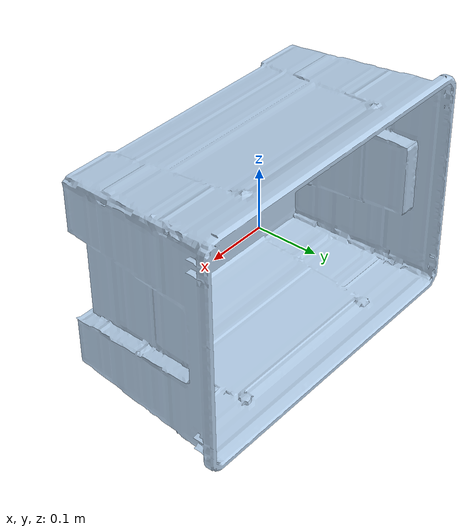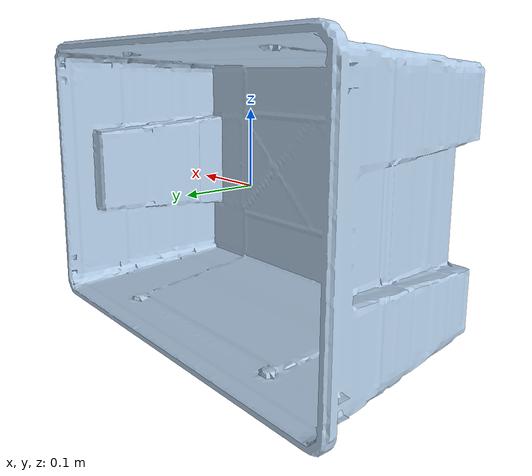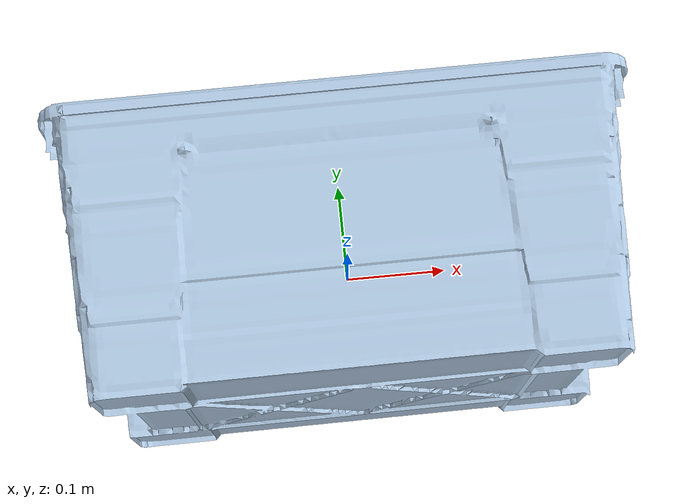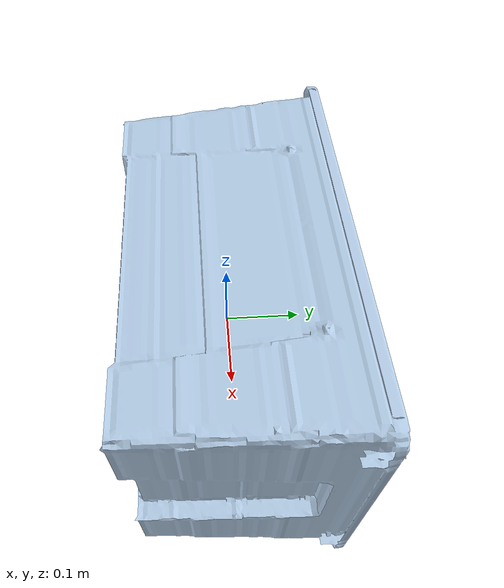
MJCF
<mujoco model="plasticbox">
  <compiler angle="radian" coordinate="global"/>

  <asset>
    <mesh name="plasticbox_mesh" file="objects/plasticbox/plasticbox.obj" scale="1 1 1"/>
    <material name="plasticbox_mat" rgba="0.7 0.8 0.9 1"/>
  </asset>

  <default>
    <default class="plasticbox_phys">
      <geom
        contype="1" conaffinity="1"
        friction="1.2 0.1 0.1"
        density="10"
        solimp="0.99 0.99 0.01"
        solref="0.01 1"
      />
    </default>
  </default>

  <worldbody>
    <body name="plasticbox" pos="0 0 0.9" quat="1 0 0 0">
      <freejoint name="plasticbox_free"/>

      <geom class="plasticbox_phys"
            name="plasticbox_geom"
            type="mesh" mesh="plasticbox_mesh"
            material="plasticbox_mat"/>
    </body>
  </worldbody>
</mujoco>
